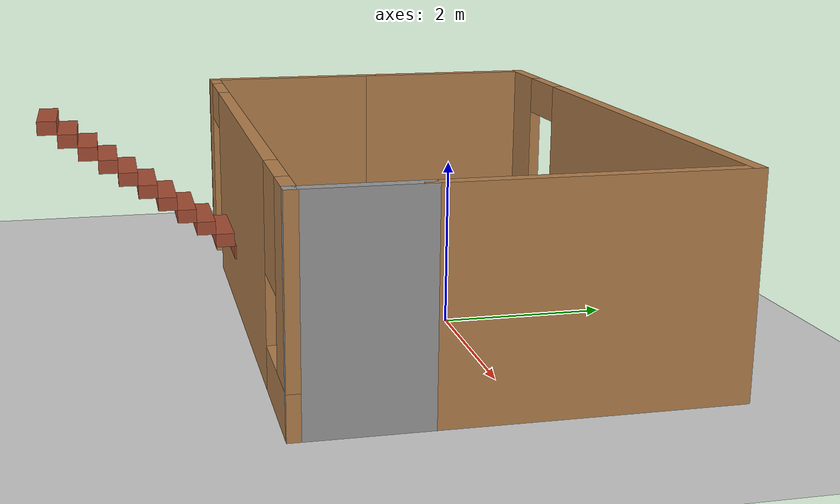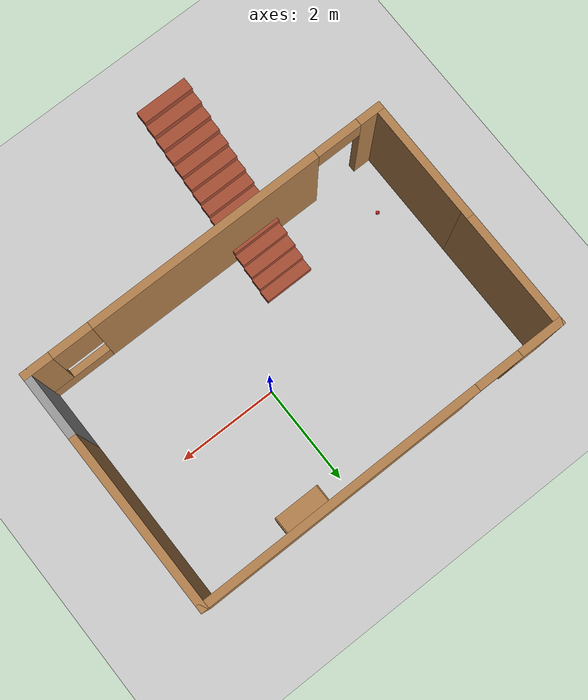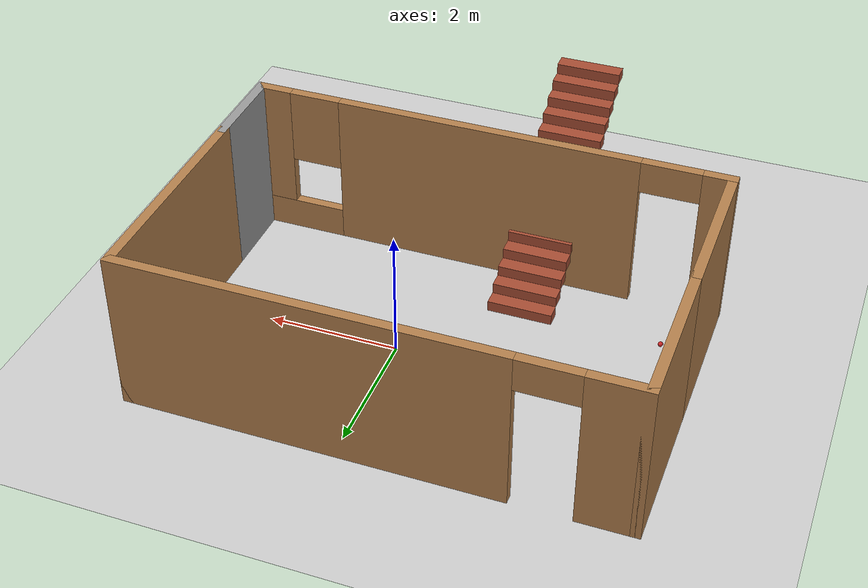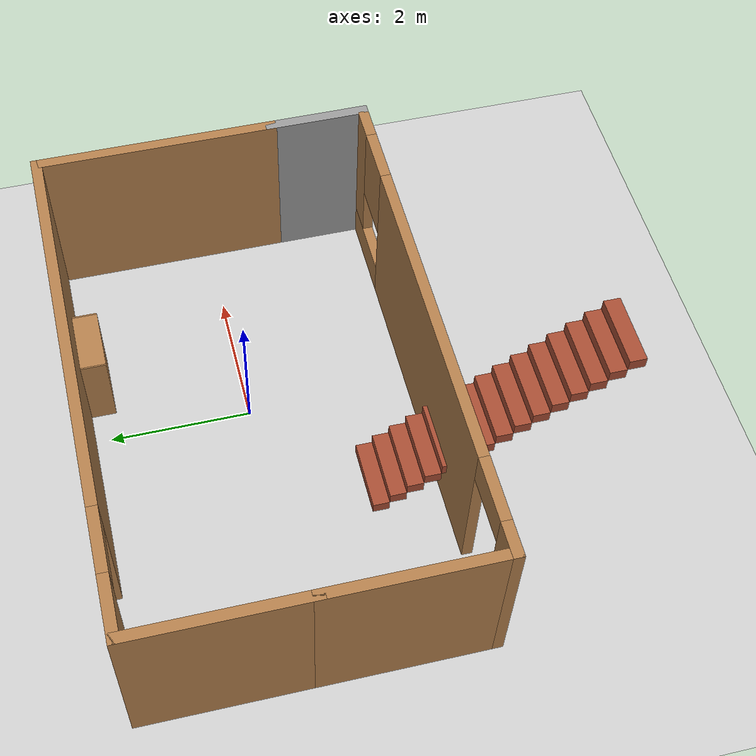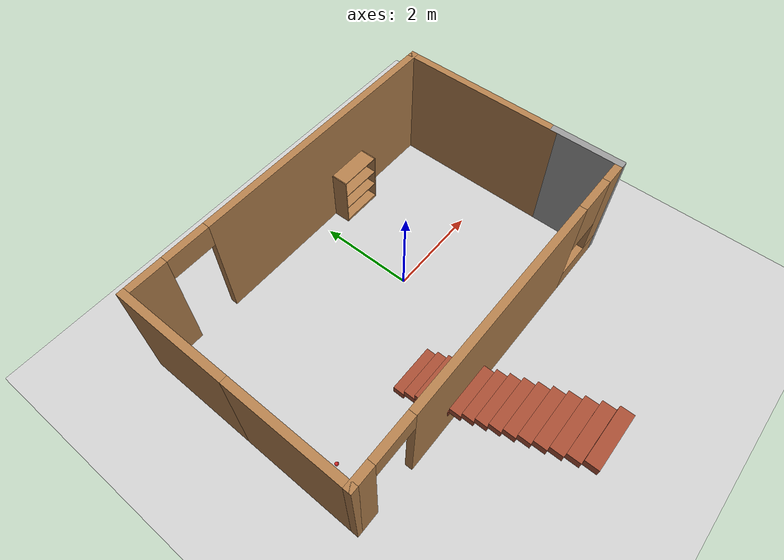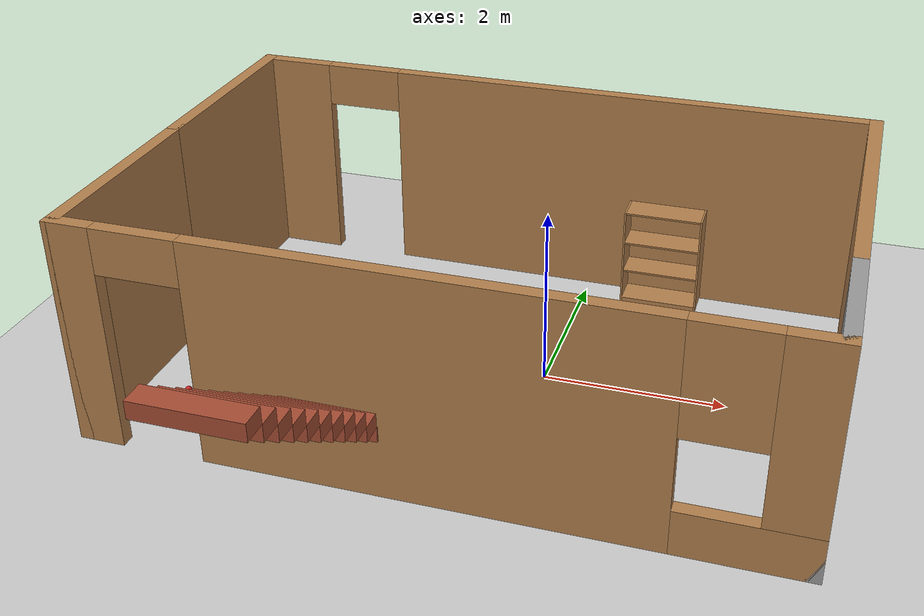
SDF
<sdf version="1.7">
 <world name="default">
  <light name="sun" type="directional">
   <pose>0 0 10 0 -0 0</pose>
   <diffuse>0.8 0.8 0.8 1</diffuse>
   <specular>0.2 0.2 0.2 1</specular>
   <attenuation>
    <range>1000</range>
    <constant>0.9</constant>
    <linear>0.01</linear>
    <quadratic>0.001</quadratic>
   </attenuation>
   <direction>-0.5 0.1 -0.9</direction>
   <spot><inner_angle>0</inner_angle><outer_angle>0</outer_angle><falloff>0</falloff></spot>
  </light>
  <model name="ground_plane">
   <static>1</static>
   <link name="link">
    <collision name="collision">
     <geometry><plane><normal>0 0 1</normal><size>100 100</size></plane></geometry>
     <surface>
      <contact><collide_bitmask>65535</collide_bitmask></contact>
      <friction><ode><mu>100</mu><mu2>50</mu2></ode></friction>
     </surface>
    </collision>
    <visual name="visual">
     <cast_shadows>0</cast_shadows>
     <geometry><plane><normal>0 0 1</normal><size>100 100</size></plane></geometry>
     <material>
      <script><uri>file://media/materials/scripts/gazebo.material</uri><name>Gazebo/Grey</name></script>
     </material>
    </visual>
   </link>
  </model>
  <gravity>0 0 -9.8</gravity>
  <magnetic_field>6e-06 2.3e-05 -4.2e-05</magnetic_field>
  <atmosphere type="adiabatic"/>
  <physics type="ode">
   <max_step_size>0.001</max_step_size>
   <real_time_factor>1</real_time_factor>
   <real_time_update_rate>1000</real_time_update_rate>
  </physics>
  <scene><ambient>0.4 0.4 0.4 1</ambient><background>0.7 0.7 0.7 1</background><shadows>1</shadows></scene>
  <audio><device>default</device></audio>
  <spherical_coordinates>
   <surface_model>EARTH_WGS84</surface_model>
   <latitude_deg>0</latitude_deg>
   <longitude_deg>0</longitude_deg>
   <elevation>0</elevation>
   <heading_deg>0</heading_deg>
  </spherical_coordinates>
  <model name="bookshelf">
   <static>1</static>
   <link name="link">
    <inertial><mass>1</mass></inertial>
    <collision name="back">
     <pose>0 0.005 0.6 0 -0 0</pose>
     <geometry><box><size>0.9 0.01 1.2</size></box></geometry>
    </collision>
    <visual name="visual1">
     <pose>0 0.005 0.6 0 -0 0</pose>
     <geometry><box><size>0.9 0.01 1.2</size></box></geometry>
     <material>
      <script><uri>file://media/materials/scripts/gazebo.material</uri><name>Gazebo/Wood</name></script>
     </material>
    </visual>
    <collision name="left_side">
     <pose>0.45 -0.195 0.6 0 -0 0</pose>
     <geometry><box><size>0.02 0.4 1.2</size></box></geometry>
    </collision>
    <visual name="visual2">
     <pose>0.45 -0.195 0.6 0 -0 0</pose>
     <geometry><box><size>0.02 0.4 1.2</size></box></geometry>
     <material>
      <script><uri>file://media/materials/scripts/gazebo.material</uri><name>Gazebo/Wood</name></script>
     </material>
    </visual>
    <collision name="right_side">
     <pose>-0.45 -0.195 0.6 0 -0 0</pose>
     <geometry><box><size>0.02 0.4 1.2</size></box></geometry>
    </collision>
    <visual name="visual3">
     <pose>-0.45 -0.195 0.6 0 -0 0</pose>
     <geometry><box><size>0.02 0.4 1.2</size></box></geometry>
     <material>
      <script><uri>file://media/materials/scripts/gazebo.material</uri><name>Gazebo/Wood</name></script>
     </material>
    </visual>
    <collision name="bottom">
     <pose>0 -0.195 0.03 0 -0 0</pose>
     <geometry><box><size>0.88 0.4 0.06</size></box></geometry>
    </collision>
    <visual name="visual4">
     <pose>0 -0.195 0.03 0 -0 0</pose>
     <geometry><box><size>0.88 0.4 0.06</size></box></geometry>
     <material>
      <script><uri>file://media/materials/scripts/gazebo.material</uri><name>Gazebo/Wood</name></script>
     </material>
    </visual>
    <collision name="top">
     <pose>0 -0.195 1.19 0 -0 0</pose>
     <geometry><box><size>0.88 0.4 0.02</size></box></geometry>
    </collision>
    <visual name="visual5">
     <pose>0 -0.195 1.19 0 -0 0</pose>
     <geometry><box><size>0.88 0.4 0.02</size></box></geometry>
     <material>
      <script><uri>file://media/materials/scripts/gazebo.material</uri><name>Gazebo/Wood</name></script>
     </material>
    </visual>
    <collision name="low_shelf">
     <pose>0 -0.195 0.43 0 -0 0</pose>
     <geometry><box><size>0.88 0.4 0.02</size></box></geometry>
    </collision>
    <visual name="visual6">
     <pose>0 -0.195 0.43 0 -0 0</pose>
     <geometry><box><size>0.88 0.4 0.02</size></box></geometry>
     <material>
      <script><uri>file://media/materials/scripts/gazebo.material</uri><name>Gazebo/Wood</name></script>
     </material>
    </visual>
    <collision name="high_shelf">
     <pose>0 -0.195 0.8 0 -0 0</pose>
     <geometry><box><size>0.88 0.4 0.02</size></box></geometry>
    </collision>
    <visual name="visual7">
     <pose>0 -0.195 0.8 0 -0 0</pose>
     <geometry><box><size>0.88 0.4 0.02</size></box></geometry>
     <material>
      <script><uri>file://media/materials/scripts/gazebo.material</uri><name>Gazebo/Wood</name></script>
     </material>
    </visual>
   </link>
   <pose>0.910818 2.26478 0 0 -0 0</pose>
  </model>
  <model name="Test">
   <pose>-0.545 -1.2275 0 0 -0 0</pose>
   <link name="Stairs_0">
    <visual name="Stairs_0_Visual_0">
     <pose>-0.925 -0.219167 0.083333 0 -0 0</pose>
     <geometry><box><size>1 0.233333 0.166667</size></box></geometry>
     <material>
      <script><uri>file://media/materials/scripts/gazebo.material</uri><name>Gazebo/Bricks</name></script>
      <ambient>1 1 1 1</ambient>
     </material>
     <meta><layer>0</layer></meta>
    </visual>
    <collision name="Stairs_0_Collision_0">
     <geometry><box><size>1 0.233333 0.166667</size></box></geometry>
     <pose>-0.925 -0.219167 0.083333 0 -0 0</pose>
    </collision>
    <visual name="Stairs_0_Visual_1">
     <pose>-0.925 -0.4525 0.25 0 -0 0</pose>
     <geometry><box><size>1 0.233333 0.166667</size></box></geometry>
     <material>
      <script><uri>file://media/materials/scripts/gazebo.material</uri><name>Gazebo/Bricks</name></script>
      <ambient>1 1 1 1</ambient>
     </material>
     <meta><layer>0</layer></meta>
    </visual>
    <collision name="Stairs_0_Collision_1">
     <geometry><box><size>1 0.233333 0.166667</size></box></geometry>
     <pose>-0.925 -0.4525 0.25 0 -0 0</pose>
    </collision>
    <visual name="Stairs_0_Visual_2">
     <pose>-0.925 -0.685833 0.416667 0 -0 0</pose>
     <geometry><box><size>1 0.233333 0.166667</size></box></geometry>
     <material>
      <script><uri>file://media/materials/scripts/gazebo.material</uri><name>Gazebo/Bricks</name></script>
      <ambient>1 1 1 1</ambient>
     </material>
     <meta><layer>0</layer></meta>
    </visual>
    <collision name="Stairs_0_Collision_2">
     <geometry><box><size>1 0.233333 0.166667</size></box></geometry>
     <pose>-0.925 -0.685833 0.416667 0 -0 0</pose>
    </collision>
    <visual name="Stairs_0_Visual_3">
     <pose>-0.925 -0.919167 0.583333 0 -0 0</pose>
     <geometry><box><size>1 0.233333 0.166667</size></box></geometry>
     <material>
      <script><uri>file://media/materials/scripts/gazebo.material</uri><name>Gazebo/Bricks</name></script>
      <ambient>1 1 1 1</ambient>
     </material>
     <meta><layer>0</layer></meta>
    </visual>
    <collision name="Stairs_0_Collision_3">
     <geometry><box><size>1 0.233333 0.166667</size></box></geometry>
     <pose>-0.925 -0.919167 0.583333 0 -0 0</pose>
    </collision>
    <visual name="Stairs_0_Visual_4">
     <pose>-0.925 -1.1525 0.75 0 -0 0</pose>
     <geometry><box><size>1 0.233333 0.166667</size></box></geometry>
     <material>
      <script><uri>file://media/materials/scripts/gazebo.material</uri><name>Gazebo/Bricks</name></script>
      <ambient>1 1 1 1</ambient>
     </material>
     <meta><layer>0</layer></meta>
    </visual>
    <collision name="Stairs_0_Collision_4">
     <geometry><box><size>1 0.233333 0.166667</size></box></geometry>
     <pose>-0.925 -1.1525 0.75 0 -0 0</pose>
    </collision>
    <visual name="Stairs_0_Visual_5">
     <pose>-0.925 -1.38583 0.916667 0 -0 0</pose>
     <geometry><box><size>1 0.233333 0.166667</size></box></geometry>
     <material>
      <script><uri>file://media/materials/scripts/gazebo.material</uri><name>Gazebo/Bricks</name></script>
      <ambient>1 1 1 1</ambient>
     </material>
     <meta><layer>0</layer></meta>
    </visual>
    <collision name="Stairs_0_Collision_5">
     <geometry><box><size>1 0.233333 0.166667</size></box></geometry>
     <pose>-0.925 -1.38583 0.916667 0 -0 0</pose>
    </collision>
    <visual name="Stairs_0_Visual_6">
     <pose>-0.925 -1.61917 1.08333 0 -0 0</pose>
     <geometry><box><size>1 0.233333 0.166667</size></box></geometry>
     <material>
      <script><uri>file://media/materials/scripts/gazebo.material</uri><name>Gazebo/Bricks</name></script>
      <ambient>1 1 1 1</ambient>
     </material>
     <meta><layer>0</layer></meta>
    </visual>
    <collision name="Stairs_0_Collision_6">
     <geometry><box><size>1 0.233333 0.166667</size></box></geometry>
     <pose>-0.925 -1.61917 1.08333 0 -0 0</pose>
    </collision>
    <visual name="Stairs_0_Visual_7">
     <pose>-0.925 -1.8525 1.25 0 -0 0</pose>
     <geometry><box><size>1 0.233333 0.166667</size></box></geometry>
     <material>
      <script><uri>file://media/materials/scripts/gazebo.material</uri><name>Gazebo/Bricks</name></script>
      <ambient>1 1 1 1</ambient>
     </material>
     <meta><layer>0</layer></meta>
    </visual>
    <collision name="Stairs_0_Collision_7">
     <geometry><box><size>1 0.233333 0.166667</size></box></geometry>
     <pose>-0.925 -1.8525 1.25 0 -0 0</pose>
    </collision>
    <visual name="Stairs_0_Visual_8">
     <pose>-0.925 -2.08583 1.41667 0 -0 0</pose>
     <geometry><box><size>1 0.233333 0.166667</size></box></geometry>
     <material>
      <script><uri>file://media/materials/scripts/gazebo.material</uri><name>Gazebo/Bricks</name></script>
      <ambient>1 1 1 1</ambient>
     </material>
     <meta><layer>0</layer></meta>
    </visual>
    <collision name="Stairs_0_Collision_8">
     <geometry><box><size>1 0.233333 0.166667</size></box></geometry>
     <pose>-0.925 -2.08583 1.41667 0 -0 0</pose>
    </collision>
    <visual name="Stairs_0_Visual_9">
     <pose>-0.925 -2.31917 1.58333 0 -0 0</pose>
     <geometry><box><size>1 0.233333 0.166667</size></box></geometry>
     <material>
      <script><uri>file://media/materials/scripts/gazebo.material</uri><name>Gazebo/Bricks</name></script>
      <ambient>1 1 1 1</ambient>
     </material>
     <meta><layer>0</layer></meta>
    </visual>
    <collision name="Stairs_0_Collision_9">
     <geometry><box><size>1 0.233333 0.166667</size></box></geometry>
     <pose>-0.925 -2.31917 1.58333 0 -0 0</pose>
    </collision>
    <visual name="Stairs_0_Visual_10">
     <pose>-0.925 -2.5525 1.75 0 -0 0</pose>
     <geometry><box><size>1 0.233333 0.166667</size></box></geometry>
     <material>
      <script><uri>file://media/materials/scripts/gazebo.material</uri><name>Gazebo/Bricks</name></script>
      <ambient>1 1 1 1</ambient>
     </material>
     <meta><layer>0</layer></meta>
    </visual>
    <collision name="Stairs_0_Collision_10">
     <geometry><box><size>1 0.233333 0.166667</size></box></geometry>
     <pose>-0.925 -2.5525 1.75 0 -0 0</pose>
    </collision>
    <visual name="Stairs_0_Visual_11">
     <pose>-0.925 -2.78583 1.91667 0 -0 0</pose>
     <geometry><box><size>1 0.233333 0.166667</size></box></geometry>
     <material>
      <script><uri>file://media/materials/scripts/gazebo.material</uri><name>Gazebo/Bricks</name></script>
      <ambient>1 1 1 1</ambient>
     </material>
     <meta><layer>0</layer></meta>
    </visual>
    <collision name="Stairs_0_Collision_11">
     <geometry><box><size>1 0.233333 0.166667</size></box></geometry>
     <pose>-0.925 -2.78583 1.91667 0 -0 0</pose>
    </collision>
    <visual name="Stairs_0_Visual_12">
     <pose>-0.925 -3.01917 2.08333 0 -0 0</pose>
     <geometry><box><size>1 0.233333 0.166667</size></box></geometry>
     <material>
      <script><uri>file://media/materials/scripts/gazebo.material</uri><name>Gazebo/Bricks</name></script>
      <ambient>1 1 1 1</ambient>
     </material>
     <meta><layer>0</layer></meta>
    </visual>
    <collision name="Stairs_0_Collision_12">
     <geometry><box><size>1 0.233333 0.166667</size></box></geometry>
     <pose>-0.925 -3.01917 2.08333 0 -0 0</pose>
    </collision>
    <visual name="Stairs_0_Visual_13">
     <pose>-0.925 -3.2525 2.25 0 -0 0</pose>
     <geometry><box><size>1 0.233333 0.166667</size></box></geometry>
     <material>
      <script><uri>file://media/materials/scripts/gazebo.material</uri><name>Gazebo/Bricks</name></script>
      <ambient>1 1 1 1</ambient>
     </material>
     <meta><layer>0</layer></meta>
    </visual>
    <collision name="Stairs_0_Collision_13">
     <geometry><box><size>1 0.233333 0.166667</size></box></geometry>
     <pose>-0.925 -3.2525 2.25 0 -0 0</pose>
    </collision>
    <visual name="Stairs_0_Visual_14">
     <pose>-0.925 -3.48583 2.41667 0 -0 0</pose>
     <geometry><box><size>1 0.233333 0.166667</size></box></geometry>
     <material>
      <script><uri>file://media/materials/scripts/gazebo.material</uri><name>Gazebo/Bricks</name></script>
      <ambient>1 1 1 1</ambient>
     </material>
     <meta><layer>0</layer></meta>
    </visual>
    <collision name="Stairs_0_Collision_14">
     <geometry><box><size>1 0.233333 0.166667</size></box></geometry>
     <pose>-0.925 -3.48583 2.41667 0 -0 0</pose>
    </collision>
   </link>
   <link name="Wall_0">
    <pose>-0 -1.1725 0 0 -0 0</pose>
    <visual name="Wall_0_Visual_0">
     <pose>-3.4975 0 1.25 0 -0 0</pose>
     <geometry><box><size>0.505 0.15 2.5</size></box></geometry>
     <material>
      <script><uri>file://media/materials/scripts/gazebo.material</uri><name>Gazebo/Wood</name></script>
      <ambient>1 1 1 1</ambient>
     </material>
     <meta><layer>0</layer></meta>
    </visual>
    <collision name="Wall_0_Collision_0">
     <geometry><box><size>0.505 0.15 2.5</size></box></geometry>
     <pose>-3.4975 0 1.25 0 -0 0</pose>
    </collision>
    <visual name="Wall_0_Visual_1">
     <pose>0.01 0 1.25 0 -0 0</pose>
     <geometry><box><size>4.71 0.15 2.5</size></box></geometry>
     <material>
      <script><uri>file://media/materials/scripts/gazebo.material</uri><name>Gazebo/Wood</name></script>
      <ambient>1 1 1 1</ambient>
     </material>
     <meta><layer>0</layer></meta>
    </visual>
    <collision name="Wall_0_Collision_1">
     <geometry><box><size>4.71 0.15 2.5</size></box></geometry>
     <pose>0.01 0 1.25 0 -0 0</pose>
    </collision>
    <visual name="Wall_0_Visual_2">
     <pose>3.0575 0 0.25 0 -0 0</pose>
     <geometry><box><size>1.385 0.15 0.5</size></box></geometry>
     <material>
      <script><uri>file://media/materials/scripts/gazebo.material</uri><name>Gazebo/Wood</name></script>
      <ambient>1 1 1 1</ambient>
     </material>
     <meta><layer>0</layer></meta>
    </visual>
    <collision name="Wall_0_Collision_2">
     <geometry><box><size>1.385 0.15 0.5</size></box></geometry>
     <pose>3.0575 0 0.25 0 -0 0</pose>
    </collision>
    <visual name="Wall_0_Visual_3">
     <pose>3.4575 0 1.5 0 -0 0</pose>
     <geometry><box><size>0.585 0.15 2</size></box></geometry>
     <material>
      <script><uri>file://media/materials/scripts/gazebo.material</uri><name>Gazebo/Wood</name></script>
      <ambient>1 1 1 1</ambient>
     </material>
     <meta><layer>0</layer></meta>
    </visual>
    <collision name="Wall_0_Collision_3">
     <geometry><box><size>0.585 0.15 2</size></box></geometry>
     <pose>3.4575 0 1.5 0 -0 0</pose>
    </collision>
    <visual name="Wall_0_Visual_4">
     <pose>2.765 0 1.9 0 -0 0</pose>
     <geometry><box><size>0.8 0.15 1.2</size></box></geometry>
     <material>
      <script><uri>file://media/materials/scripts/gazebo.material</uri><name>Gazebo/Wood</name></script>
      <ambient>1 1 1 1</ambient>
     </material>
     <meta><layer>0</layer></meta>
    </visual>
    <collision name="Wall_0_Collision_4">
     <geometry><box><size>0.8 0.15 1.2</size></box></geometry>
     <pose>2.765 0 1.9 0 -0 0</pose>
    </collision>
    <visual name="Wall_0_Visual_5">
     <pose>-2.795 0 2.25 0 -0 0</pose>
     <geometry><box><size>0.9 0.15 0.5</size></box></geometry>
     <material>
      <script><uri>file://media/materials/scripts/gazebo.material</uri><name>Gazebo/Wood</name></script>
      <ambient>1 1 1 1</ambient>
     </material>
     <meta><layer>0</layer></meta>
    </visual>
    <collision name="Wall_0_Collision_5">
     <geometry><box><size>0.9 0.15 0.5</size></box></geometry>
     <pose>-2.795 0 2.25 0 -0 0</pose>
    </collision>
   </link>
   <link name="Wall_11">
    <collision name="Wall_11_Collision">
     <geometry><box><size>1.5 0.15 2.5</size></box></geometry>
     <pose>0 0 1.25 0 -0 0</pose>
    </collision>
    <visual name="Wall_11_Visual">
     <pose>0 0 1.25 0 -0 0</pose>
     <geometry><box><size>1.5 0.15 2.5</size></box></geometry>
     <material>
      <script><uri>file://media/materials/scripts/gazebo.material</uri><name>Gazebo/Grey</name></script>
      <ambient>1 1 1 1</ambient>
     </material>
     <meta><layer>0</layer></meta>
    </visual>
    <pose>3.675 -0.4975 0 0 -0 -1.5708</pose>
   </link>
   <link name="Wall_5">
    <collision name="Wall_5_Collision">
     <geometry><box><size>2.5 0.15 2.5</size></box></geometry>
     <pose>0 0 1.25 0 -0 0</pose>
    </collision>
    <visual name="Wall_5_Visual">
     <pose>0 0 1.25 0 -0 0</pose>
     <geometry><box><size>2.5 0.15 2.5</size></box></geometry>
     <material>
      <script><uri>file://media/materials/scripts/gazebo.material</uri><name>Gazebo/Wood</name></script>
      <ambient>1 1 1 1</ambient>
     </material>
     <meta><layer>0</layer></meta>
    </visual>
    <pose>-3.675 0.0025 0 0 -0 1.5708</pose>
   </link>
   <link name="Wall_7">
    <collision name="Wall_7_Collision">
     <geometry><box><size>2.5 0.15 2.5</size></box></geometry>
     <pose>0 0 1.25 0 -0 0</pose>
    </collision>
    <visual name="Wall_7_Visual">
     <pose>0 0 1.25 0 -0 0</pose>
     <geometry><box><size>2.5 0.15 2.5</size></box></geometry>
     <material>
      <script><uri>file://media/materials/scripts/gazebo.material</uri><name>Gazebo/Wood</name></script>
      <ambient>1 1 1 1</ambient>
     </material>
     <meta><layer>0</layer></meta>
    </visual>
    <pose>-3.675 2.3525 0 0 -0 1.5708</pose>
   </link>
   <link name="Wall_8">
    <pose>-0 3.5275 0 0 -0 0</pose>
    <visual name="Wall_8_Visual_0">
     <pose>-3.2975 0 1.25 0 -0 0</pose>
     <geometry><box><size>0.905 0.15 2.5</size></box></geometry>
     <material>
      <script><uri>file://media/materials/scripts/gazebo.material</uri><name>Gazebo/Wood</name></script>
      <ambient>1 1 1 1</ambient>
     </material>
     <meta><layer>0</layer></meta>
    </visual>
    <collision name="Wall_8_Collision_0">
     <geometry><box><size>0.905 0.15 2.5</size></box></geometry>
     <pose>-3.2975 0 1.25 0 -0 0</pose>
    </collision>
    <visual name="Wall_8_Visual_1">
     <pose>0.9025 0 1.25 0 -0 0</pose>
     <geometry><box><size>5.695 0.15 2.5</size></box></geometry>
     <material>
      <script><uri>file://media/materials/scripts/gazebo.material</uri><name>Gazebo/Wood</name></script>
      <ambient>1 1 1 1</ambient>
     </material>
     <meta><layer>0</layer></meta>
    </visual>
    <collision name="Wall_8_Collision_1">
     <geometry><box><size>5.695 0.15 2.5</size></box></geometry>
     <pose>0.9025 0 1.25 0 -0 0</pose>
    </collision>
    <visual name="Wall_8_Visual_2">
     <pose>-2.395 0 2.25 0 -0 0</pose>
     <geometry><box><size>0.9 0.15 0.5</size></box></geometry>
     <material>
      <script><uri>file://media/materials/scripts/gazebo.material</uri><name>Gazebo/Wood</name></script>
      <ambient>1 1 1 1</ambient>
     </material>
     <meta><layer>0</layer></meta>
    </visual>
    <collision name="Wall_8_Collision_2">
     <geometry><box><size>0.9 0.15 0.5</size></box></geometry>
     <pose>-2.395 0 2.25 0 -0 0</pose>
    </collision>
   </link>
   <link name="Wall_9">
    <collision name="Wall_9_Collision">
     <geometry><box><size>3.5 0.15 2.5</size></box></geometry>
     <pose>0 0 1.25 0 -0 0</pose>
    </collision>
    <visual name="Wall_9_Visual">
     <pose>0 0 1.25 0 -0 0</pose>
     <geometry><box><size>3.5 0.15 2.5</size></box></geometry>
     <material>
      <script><uri>file://media/materials/scripts/gazebo.material</uri><name>Gazebo/Wood</name></script>
      <ambient>1 1 1 1</ambient>
     </material>
     <meta><layer>0</layer></meta>
    </visual>
    <pose>3.675 1.8525 0 0 -0 -1.5708</pose>
   </link>
   <static>1</static>
  </model>
  <model name="cricket_ball">
   <link name="link">
    <pose>0 0 0.0375 0 -0 0</pose>
    <inertial>
     <mass>0.1467</mass>
     <inertia>
      <ixx>8.25187e-05</ixx>
      <ixy>0</ixy>
      <ixz>0</ixz>
      <iyy>8.25187e-05</iyy>
      <iyz>0</iyz>
      <izz>8.25187e-05</izz>
     </inertia>
    </inertial>
    <collision name="collision">
     <geometry><sphere><radius>0.0375</radius></sphere></geometry>
     <surface>
      <contact>
       <poissons_ratio>0.347</poissons_ratio>
       <elastic_modulus>8.8e+09</elastic_modulus>
       <ode><kp>100000</kp><kd>100</kd><max_vel>100</max_vel><min_depth>0.001</min_depth></ode>
      </contact>
      <friction>
       <torsional>
        <coefficient>1</coefficient>
        <use_patch_radius>0</use_patch_radius>
        <surface_radius>0.01</surface_radius>
       </torsional>
      </friction>
     </surface>
    </collision>
    <visual name="visual">
     <geometry><sphere><radius>0.0375</radius></sphere></geometry>
     <material>
      <script><uri>file://media/materials/scripts/gazebo.material</uri><name>Gazebo/Red</name></script>
     </material>
    </visual>
    <velocity_decay><linear>0</linear><angular>0.005</angular></velocity_decay>
   </link>
   <pose>-3.62862 -1.4235 -0.001014 0 -0 0</pose>
  </model>
 </world>
</sdf>
